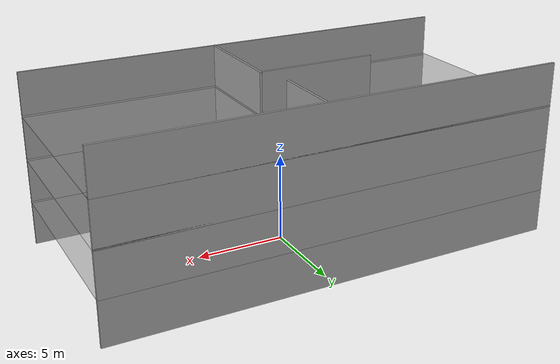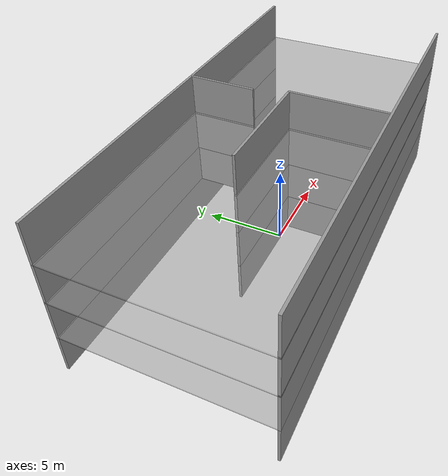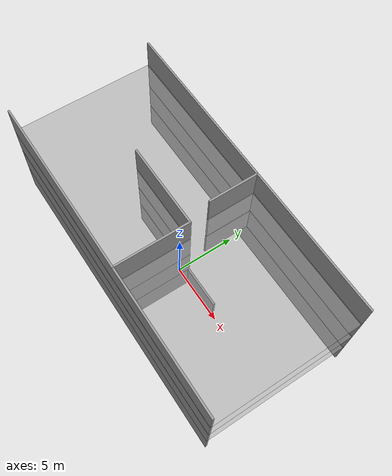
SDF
<sdf version="1.7">
 <world name="__default__">
  <model name="level4_floor">
   <link name="Floor_0">
    <pose>0 0 2.5 0 -0 0</pose>
    <inertial>
     <mass>1</mass>
     <inertia><ixx>1</ixx><ixy>0</ixy><ixz>0</ixz><iyy>1</iyy><iyz>0</iyz><izz>1</izz></inertia>
    </inertial>
    <visual name="Floor_0_Visual">
     <pose>0 0 0.05 0 -0 0</pose>
     <geometry><box><size>26 12 0.1</size></box></geometry>
     <material>
      <script><uri>file://media/materials/scripts/gazebo.material</uri><name>Gazebo/Grey</name></script>
      <ambient>1 1 1 1</ambient>
      <shader type="pixel"><normal_map>__default__</normal_map></shader>
      <diffuse>0.7 0.7 0.7 1</diffuse>
      <specular>0.01 0.01 0.01 1</specular>
      <emissive>0 0 0 1</emissive>
     </material>
     <meta><layer>1</layer></meta>
     <transparency>0.5</transparency>
    </visual>
    <collision name="Floor_0_Collision">
     <pose>0 0 0.05 0 -0 0</pose>
     <geometry><box><size>26 12 0.1</size></box></geometry>
     <surface>
      <friction>
       <ode><mu>1</mu><mu2>1</mu2><fdir1>0 0 0</fdir1><slip1>0</slip1><slip2>0</slip2></ode>
       <torsional>
        <coefficient>1</coefficient>
        <patch_radius>0</patch_radius>
        <surface_radius>0</surface_radius>
        <use_patch_radius>1</use_patch_radius>
        <ode><slip>0</slip></ode>
       </torsional>
      </friction>
      <bounce><restitution_coefficient>0</restitution_coefficient><threshold>1e+06</threshold></bounce>
      <contact>
       <collide_without_contact>0</collide_without_contact>
       <collide_without_contact_bitmask>1</collide_without_contact_bitmask>
       <collide_bitmask>1</collide_bitmask>
       <ode>
        <soft_cfm>0</soft_cfm>
        <soft_erp>0.2</soft_erp>
        <kp>1e+13</kp>
        <kd>1</kd>
        <max_vel>0.01</max_vel>
        <min_depth>0</min_depth>
       </ode>
       <bullet>
        <split_impulse>1</split_impulse>
        <split_impulse_penetration_threshold>-0.01</split_impulse_penetration_threshold>
        <soft_cfm>0</soft_cfm>
        <soft_erp>0.2</soft_erp>
        <kp>1e+13</kp>
        <kd>1</kd>
       </bullet>
      </contact>
     </surface>
    </collision>
   </link>
   <link name="Floor_1">
    <pose>0 0 5 0 -0 0</pose>
    <inertial>
     <mass>1</mass>
     <inertia><ixx>1</ixx><ixy>0</ixy><ixz>0</ixz><iyy>1</iyy><iyz>0</iyz><izz>1</izz></inertia>
    </inertial>
    <visual name="Floor_1_Visual">
     <pose>0 0 0.05 0 -0 0</pose>
     <geometry><box><size>26 12 0.1</size></box></geometry>
     <material>
      <script><uri>file://media/materials/scripts/gazebo.material</uri><name>Gazebo/Grey</name></script>
      <ambient>1 1 1 1</ambient>
      <shader type="pixel"><normal_map>__default__</normal_map></shader>
      <diffuse>0.7 0.7 0.7 1</diffuse>
      <specular>0.01 0.01 0.01 1</specular>
      <emissive>0 0 0 1</emissive>
     </material>
     <meta><layer>2</layer></meta>
     <transparency>0.5</transparency>
    </visual>
    <collision name="Floor_1_Collision">
     <pose>0 0 0.05 0 -0 0</pose>
     <geometry><box><size>26 12 0.1</size></box></geometry>
     <surface>
      <friction>
       <ode><mu>1</mu><mu2>1</mu2><fdir1>0 0 0</fdir1><slip1>0</slip1><slip2>0</slip2></ode>
       <torsional>
        <coefficient>1</coefficient>
        <patch_radius>0</patch_radius>
        <surface_radius>0</surface_radius>
        <use_patch_radius>1</use_patch_radius>
        <ode><slip>0</slip></ode>
       </torsional>
      </friction>
      <bounce><restitution_coefficient>0</restitution_coefficient><threshold>1e+06</threshold></bounce>
      <contact>
       <collide_without_contact>0</collide_without_contact>
       <collide_without_contact_bitmask>1</collide_without_contact_bitmask>
       <collide_bitmask>1</collide_bitmask>
       <ode>
        <soft_cfm>0</soft_cfm>
        <soft_erp>0.2</soft_erp>
        <kp>1e+13</kp>
        <kd>1</kd>
        <max_vel>0.01</max_vel>
        <min_depth>0</min_depth>
       </ode>
       <bullet>
        <split_impulse>1</split_impulse>
        <split_impulse_penetration_threshold>-0.01</split_impulse_penetration_threshold>
        <soft_cfm>0</soft_cfm>
        <soft_erp>0.2</soft_erp>
        <kp>1e+13</kp>
        <kd>1</kd>
       </bullet>
      </contact>
     </surface>
    </collision>
   </link>
   <link name="Floor_2">
    <pose>0 0 7.5 0 -0 0</pose>
    <inertial>
     <mass>1</mass>
     <inertia><ixx>1</ixx><ixy>0</ixy><ixz>0</ixz><iyy>1</iyy><iyz>0</iyz><izz>1</izz></inertia>
    </inertial>
    <visual name="Floor_2_Visual">
     <pose>0 0 0.05 0 -0 0</pose>
     <geometry><box><size>26 12 0.1</size></box></geometry>
     <material>
      <script><uri>file://media/materials/scripts/gazebo.material</uri><name>Gazebo/Grey</name></script>
      <ambient>1 1 1 1</ambient>
      <shader type="pixel"><normal_map>__default__</normal_map></shader>
      <diffuse>0.7 0.7 0.7 1</diffuse>
      <specular>0.01 0.01 0.01 1</specular>
      <emissive>0 0 0 1</emissive>
     </material>
     <meta><layer>3</layer></meta>
     <transparency>0.5</transparency>
    </visual>
    <collision name="Floor_2_Collision">
     <pose>0 0 0.05 0 -0 0</pose>
     <geometry><box><size>26 12 0.1</size></box></geometry>
     <surface>
      <friction>
       <ode><mu>1</mu><mu2>1</mu2><fdir1>0 0 0</fdir1><slip1>0</slip1><slip2>0</slip2></ode>
       <torsional>
        <coefficient>1</coefficient>
        <patch_radius>0</patch_radius>
        <surface_radius>0</surface_radius>
        <use_patch_radius>1</use_patch_radius>
        <ode><slip>0</slip></ode>
       </torsional>
      </friction>
      <bounce><restitution_coefficient>0</restitution_coefficient><threshold>1e+06</threshold></bounce>
      <contact>
       <collide_without_contact>0</collide_without_contact>
       <collide_without_contact_bitmask>1</collide_without_contact_bitmask>
       <collide_bitmask>1</collide_bitmask>
       <ode>
        <soft_cfm>0</soft_cfm>
        <soft_erp>0.2</soft_erp>
        <kp>1e+13</kp>
        <kd>1</kd>
        <max_vel>0.01</max_vel>
        <min_depth>0</min_depth>
       </ode>
       <bullet>
        <split_impulse>1</split_impulse>
        <split_impulse_penetration_threshold>-0.01</split_impulse_penetration_threshold>
        <soft_cfm>0</soft_cfm>
        <soft_erp>0.2</soft_erp>
        <kp>1e+13</kp>
        <kd>1</kd>
       </bullet>
      </contact>
     </surface>
    </collision>
   </link>
   <link name="Wall_0">
    <pose>0 5.925 0 0 -0 0</pose>
    <visual name="Wall_0_Visual">
     <pose>0 0 1.25 0 -0 0</pose>
     <geometry><box><size>26 0.15 2.5</size></box></geometry>
     <material>
      <script><uri>file://media/materials/scripts/gazebo.material</uri><name>Gazebo/Grey</name></script>
      <ambient>1 1 1 1</ambient>
      <shader type="pixel"/>
     </material>
     <meta><layer>0</layer></meta>
    </visual>
    <collision name="Wall_0_Collision">
     <pose>0 0 1.25 0 -0 0</pose>
     <geometry><box><size>26 0.15 2.5</size></box></geometry>
     <surface>
      <friction>
       <ode><mu>1</mu><mu2>1</mu2><fdir1>0 0 0</fdir1><slip1>0</slip1><slip2>0</slip2></ode>
       <torsional>
        <coefficient>1</coefficient>
        <patch_radius>0</patch_radius>
        <surface_radius>0</surface_radius>
        <use_patch_radius>1</use_patch_radius>
        <ode><slip>0</slip></ode>
       </torsional>
      </friction>
      <bounce><restitution_coefficient>0</restitution_coefficient><threshold>1e+06</threshold></bounce>
      <contact>
       <collide_without_contact>0</collide_without_contact>
       <collide_without_contact_bitmask>1</collide_without_contact_bitmask>
       <collide_bitmask>1</collide_bitmask>
       <ode>
        <soft_cfm>0</soft_cfm>
        <soft_erp>0.2</soft_erp>
        <kp>1e+13</kp>
        <kd>1</kd>
        <max_vel>0.01</max_vel>
        <min_depth>0</min_depth>
       </ode>
       <bullet>
        <split_impulse>1</split_impulse>
        <split_impulse_penetration_threshold>-0.01</split_impulse_penetration_threshold>
        <soft_cfm>0</soft_cfm>
        <soft_erp>0.2</soft_erp>
        <kp>1e+13</kp>
        <kd>1</kd>
       </bullet>
      </contact>
     </surface>
    </collision>
   </link>
   <link name="Wall_16">
    <pose>1.74198 -2.94095 0 0 0 -1.5708</pose>
    <visual name="Wall_16_Visual">
     <pose>0 0 1.25 0 -0 0</pose>
     <geometry><box><size>6 0.15 2.5</size></box></geometry>
     <material>
      <script><uri>file://media/materials/scripts/gazebo.material</uri><name>Gazebo/Grey</name></script>
      <ambient>1 1 1 1</ambient>
      <shader type="pixel"/>
     </material>
     <meta><layer>0</layer></meta>
    </visual>
    <collision name="Wall_16_Collision">
     <pose>0 0 1.25 0 -0 0</pose>
     <geometry><box><size>6 0.15 2.5</size></box></geometry>
     <surface>
      <friction>
       <ode><mu>1</mu><mu2>1</mu2><fdir1>0 0 0</fdir1><slip1>0</slip1><slip2>0</slip2></ode>
       <torsional>
        <coefficient>1</coefficient>
        <patch_radius>0</patch_radius>
        <surface_radius>0</surface_radius>
        <use_patch_radius>1</use_patch_radius>
        <ode><slip>0</slip></ode>
       </torsional>
      </friction>
      <bounce><restitution_coefficient>0</restitution_coefficient><threshold>1e+06</threshold></bounce>
      <contact>
       <collide_without_contact>0</collide_without_contact>
       <collide_without_contact_bitmask>1</collide_without_contact_bitmask>
       <collide_bitmask>1</collide_bitmask>
       <ode>
        <soft_cfm>0</soft_cfm>
        <soft_erp>0.2</soft_erp>
        <kp>1e+13</kp>
        <kd>1</kd>
        <max_vel>0.01</max_vel>
        <min_depth>0</min_depth>
       </ode>
       <bullet>
        <split_impulse>1</split_impulse>
        <split_impulse_penetration_threshold>-0.01</split_impulse_penetration_threshold>
        <soft_cfm>0</soft_cfm>
        <soft_erp>0.2</soft_erp>
        <kp>1e+13</kp>
        <kd>1</kd>
       </bullet>
      </contact>
     </surface>
    </collision>
   </link>
   <link name="Wall_18">
    <pose>-1.68374 -0.007809 0 0 -0 0</pose>
    <visual name="Wall_18_Visual">
     <pose>0 0 1.25 0 -0 0</pose>
     <geometry><box><size>6.75 0.15 2.5</size></box></geometry>
     <material>
      <script><uri>file://media/materials/scripts/gazebo.material</uri><name>Gazebo/Grey</name></script>
      <ambient>1 1 1 1</ambient>
      <shader type="pixel"/>
     </material>
     <meta><layer>0</layer></meta>
    </visual>
    <collision name="Wall_18_Collision">
     <pose>0 0 1.25 0 -0 0</pose>
     <geometry><box><size>6.75 0.15 2.5</size></box></geometry>
     <surface>
      <friction>
       <ode><mu>1</mu><mu2>1</mu2><fdir1>0 0 0</fdir1><slip1>0</slip1><slip2>0</slip2></ode>
       <torsional>
        <coefficient>1</coefficient>
        <patch_radius>0</patch_radius>
        <surface_radius>0</surface_radius>
        <use_patch_radius>1</use_patch_radius>
        <ode><slip>0</slip></ode>
       </torsional>
      </friction>
      <bounce><restitution_coefficient>0</restitution_coefficient><threshold>1e+06</threshold></bounce>
      <contact>
       <collide_without_contact>0</collide_without_contact>
       <collide_without_contact_bitmask>1</collide_without_contact_bitmask>
       <collide_bitmask>1</collide_bitmask>
       <ode>
        <soft_cfm>0</soft_cfm>
        <soft_erp>0.2</soft_erp>
        <kp>1e+13</kp>
        <kd>1</kd>
        <max_vel>0.01</max_vel>
        <min_depth>0</min_depth>
       </ode>
       <bullet>
        <split_impulse>1</split_impulse>
        <split_impulse_penetration_threshold>-0.01</split_impulse_penetration_threshold>
        <soft_cfm>0</soft_cfm>
        <soft_erp>0.2</soft_erp>
        <kp>1e+13</kp>
        <kd>1</kd>
       </bullet>
      </contact>
     </surface>
    </collision>
   </link>
   <link name="Wall_22">
    <pose>3.48965 -0.007809 0 0 -0 0</pose>
    <visual name="Wall_22_Visual">
     <pose>0 0 1.25 0 -0 0</pose>
     <geometry><box><size>3.5 0.15 2.5</size></box></geometry>
     <material>
      <script><uri>file://media/materials/scripts/gazebo.material</uri><name>Gazebo/Grey</name></script>
      <ambient>1 1 1 1</ambient>
      <shader type="pixel"/>
     </material>
     <meta><layer>0</layer></meta>
    </visual>
    <collision name="Wall_22_Collision">
     <pose>0 0 1.25 0 -0 0</pose>
     <geometry><box><size>3.5 0.15 2.5</size></box></geometry>
     <surface>
      <friction>
       <ode><mu>1</mu><mu2>1</mu2><fdir1>0 0 0</fdir1><slip1>0</slip1><slip2>0</slip2></ode>
       <torsional>
        <coefficient>1</coefficient>
        <patch_radius>0</patch_radius>
        <surface_radius>0</surface_radius>
        <use_patch_radius>1</use_patch_radius>
        <ode><slip>0</slip></ode>
       </torsional>
      </friction>
      <bounce><restitution_coefficient>0</restitution_coefficient><threshold>1e+06</threshold></bounce>
      <contact>
       <collide_without_contact>0</collide_without_contact>
       <collide_without_contact_bitmask>1</collide_without_contact_bitmask>
       <collide_bitmask>1</collide_bitmask>
       <ode>
        <soft_cfm>0</soft_cfm>
        <soft_erp>0.2</soft_erp>
        <kp>1e+13</kp>
        <kd>1</kd>
        <max_vel>0.01</max_vel>
        <min_depth>0</min_depth>
       </ode>
       <bullet>
        <split_impulse>1</split_impulse>
        <split_impulse_penetration_threshold>-0.01</split_impulse_penetration_threshold>
        <soft_cfm>0</soft_cfm>
        <soft_erp>0.2</soft_erp>
        <kp>1e+13</kp>
        <kd>1</kd>
       </bullet>
      </contact>
     </surface>
    </collision>
   </link>
   <link name="Wall_29">
    <pose>0 5.925 2.5 0 -0 0</pose>
    <visual name="Wall_29_Visual">
     <pose>0 0 1.25 0 -0 0</pose>
     <geometry><box><size>26 0.15 2.5</size></box></geometry>
     <material>
      <script><uri>file://media/materials/scripts/gazebo.material</uri><name>Gazebo/Grey</name></script>
      <ambient>1 1 1 1</ambient>
      <shader type="pixel"/>
     </material>
     <meta><layer>1</layer></meta>
    </visual>
    <collision name="Wall_29_Collision">
     <pose>0 0 1.25 0 -0 0</pose>
     <geometry><box><size>26 0.15 2.5</size></box></geometry>
     <surface>
      <friction>
       <ode><mu>1</mu><mu2>1</mu2><fdir1>0 0 0</fdir1><slip1>0</slip1><slip2>0</slip2></ode>
       <torsional>
        <coefficient>1</coefficient>
        <patch_radius>0</patch_radius>
        <surface_radius>0</surface_radius>
        <use_patch_radius>1</use_patch_radius>
        <ode><slip>0</slip></ode>
       </torsional>
      </friction>
      <bounce><restitution_coefficient>0</restitution_coefficient><threshold>1e+06</threshold></bounce>
      <contact>
       <collide_without_contact>0</collide_without_contact>
       <collide_without_contact_bitmask>1</collide_without_contact_bitmask>
       <collide_bitmask>1</collide_bitmask>
       <ode>
        <soft_cfm>0</soft_cfm>
        <soft_erp>0.2</soft_erp>
        <kp>1e+13</kp>
        <kd>1</kd>
        <max_vel>0.01</max_vel>
        <min_depth>0</min_depth>
       </ode>
       <bullet>
        <split_impulse>1</split_impulse>
        <split_impulse_penetration_threshold>-0.01</split_impulse_penetration_threshold>
        <soft_cfm>0</soft_cfm>
        <soft_erp>0.2</soft_erp>
        <kp>1e+13</kp>
        <kd>1</kd>
       </bullet>
      </contact>
     </surface>
    </collision>
   </link>
   <link name="Wall_31">
    <pose>0 -5.925 2.5 0 -0 0</pose>
    <visual name="Wall_31_Visual">
     <pose>0 0 1.25 0 -0 0</pose>
     <geometry><box><size>26 0.15 2.5</size></box></geometry>
     <material>
      <script><uri>file://media/materials/scripts/gazebo.material</uri><name>Gazebo/Grey</name></script>
      <ambient>1 1 1 1</ambient>
      <shader type="pixel"/>
     </material>
     <meta><layer>1</layer></meta>
    </visual>
    <collision name="Wall_31_Collision">
     <pose>0 0 1.25 0 -0 0</pose>
     <geometry><box><size>26 0.15 2.5</size></box></geometry>
     <surface>
      <friction>
       <ode><mu>1</mu><mu2>1</mu2><fdir1>0 0 0</fdir1><slip1>0</slip1><slip2>0</slip2></ode>
       <torsional>
        <coefficient>1</coefficient>
        <patch_radius>0</patch_radius>
        <surface_radius>0</surface_radius>
        <use_patch_radius>1</use_patch_radius>
        <ode><slip>0</slip></ode>
       </torsional>
      </friction>
      <bounce><restitution_coefficient>0</restitution_coefficient><threshold>1e+06</threshold></bounce>
      <contact>
       <collide_without_contact>0</collide_without_contact>
       <collide_without_contact_bitmask>1</collide_without_contact_bitmask>
       <collide_bitmask>1</collide_bitmask>
       <ode>
        <soft_cfm>0</soft_cfm>
        <soft_erp>0.2</soft_erp>
        <kp>1e+13</kp>
        <kd>1</kd>
        <max_vel>0.01</max_vel>
        <min_depth>0</min_depth>
       </ode>
       <bullet>
        <split_impulse>1</split_impulse>
        <split_impulse_penetration_threshold>-0.01</split_impulse_penetration_threshold>
        <soft_cfm>0</soft_cfm>
        <soft_erp>0.2</soft_erp>
        <kp>1e+13</kp>
        <kd>1</kd>
       </bullet>
      </contact>
     </surface>
    </collision>
   </link>
   <link name="Wall_35">
    <pose>1.74198 -2.94095 2.5 0 0 -1.5708</pose>
    <visual name="Wall_35_Visual">
     <pose>0 0 1.25 0 -0 0</pose>
     <geometry><box><size>6 0.15 2.5</size></box></geometry>
     <material>
      <script><uri>file://media/materials/scripts/gazebo.material</uri><name>Gazebo/Grey</name></script>
      <ambient>1 1 1 1</ambient>
      <shader type="pixel"/>
     </material>
     <meta><layer>1</layer></meta>
    </visual>
    <collision name="Wall_35_Collision">
     <pose>0 0 1.25 0 -0 0</pose>
     <geometry><box><size>6 0.15 2.5</size></box></geometry>
     <surface>
      <friction>
       <ode><mu>1</mu><mu2>1</mu2><fdir1>0 0 0</fdir1><slip1>0</slip1><slip2>0</slip2></ode>
       <torsional>
        <coefficient>1</coefficient>
        <patch_radius>0</patch_radius>
        <surface_radius>0</surface_radius>
        <use_patch_radius>1</use_patch_radius>
        <ode><slip>0</slip></ode>
       </torsional>
      </friction>
      <bounce><restitution_coefficient>0</restitution_coefficient><threshold>1e+06</threshold></bounce>
      <contact>
       <collide_without_contact>0</collide_without_contact>
       <collide_without_contact_bitmask>1</collide_without_contact_bitmask>
       <collide_bitmask>1</collide_bitmask>
       <ode>
        <soft_cfm>0</soft_cfm>
        <soft_erp>0.2</soft_erp>
        <kp>1e+13</kp>
        <kd>1</kd>
        <max_vel>0.01</max_vel>
        <min_depth>0</min_depth>
       </ode>
       <bullet>
        <split_impulse>1</split_impulse>
        <split_impulse_penetration_threshold>-0.01</split_impulse_penetration_threshold>
        <soft_cfm>0</soft_cfm>
        <soft_erp>0.2</soft_erp>
        <kp>1e+13</kp>
        <kd>1</kd>
       </bullet>
      </contact>
     </surface>
    </collision>
   </link>
   <link name="Wall_36">
    <pose>-1.68374 -0.007809 2.5 0 -0 0</pose>
    <visual name="Wall_36_Visual">
     <pose>0 0 1.25 0 -0 0</pose>
     <geometry><box><size>6.75 0.15 2.5</size></box></geometry>
     <material>
      <script><uri>file://media/materials/scripts/gazebo.material</uri><name>Gazebo/Grey</name></script>
      <ambient>1 1 1 1</ambient>
      <shader type="pixel"/>
     </material>
     <meta><layer>1</layer></meta>
    </visual>
    <collision name="Wall_36_Collision">
     <pose>0 0 1.25 0 -0 0</pose>
     <geometry><box><size>6.75 0.15 2.5</size></box></geometry>
     <surface>
      <friction>
       <ode><mu>1</mu><mu2>1</mu2><fdir1>0 0 0</fdir1><slip1>0</slip1><slip2>0</slip2></ode>
       <torsional>
        <coefficient>1</coefficient>
        <patch_radius>0</patch_radius>
        <surface_radius>0</surface_radius>
        <use_patch_radius>1</use_patch_radius>
        <ode><slip>0</slip></ode>
       </torsional>
      </friction>
      <bounce><restitution_coefficient>0</restitution_coefficient><threshold>1e+06</threshold></bounce>
      <contact>
       <collide_without_contact>0</collide_without_contact>
       <collide_without_contact_bitmask>1</collide_without_contact_bitmask>
       <collide_bitmask>1</collide_bitmask>
       <ode>
        <soft_cfm>0</soft_cfm>
        <soft_erp>0.2</soft_erp>
        <kp>1e+13</kp>
        <kd>1</kd>
        <max_vel>0.01</max_vel>
        <min_depth>0</min_depth>
       </ode>
       <bullet>
        <split_impulse>1</split_impulse>
        <split_impulse_penetration_threshold>-0.01</split_impulse_penetration_threshold>
        <soft_cfm>0</soft_cfm>
        <soft_erp>0.2</soft_erp>
        <kp>1e+13</kp>
        <kd>1</kd>
       </bullet>
      </contact>
     </surface>
    </collision>
   </link>
   <link name="Wall_42">
    <pose>0 5.925 5 0 -0 0</pose>
    <visual name="Wall_42_Visual">
     <pose>0 0 1.25 0 -0 0</pose>
     <geometry><box><size>26 0.15 2.5</size></box></geometry>
     <material>
      <script><uri>file://media/materials/scripts/gazebo.material</uri><name>Gazebo/Grey</name></script>
      <ambient>1 1 1 1</ambient>
      <shader type="pixel"/>
     </material>
     <meta><layer>2</layer></meta>
    </visual>
    <collision name="Wall_42_Collision">
     <pose>0 0 1.25 0 -0 0</pose>
     <geometry><box><size>26 0.15 2.5</size></box></geometry>
     <surface>
      <friction>
       <ode><mu>1</mu><mu2>1</mu2><fdir1>0 0 0</fdir1><slip1>0</slip1><slip2>0</slip2></ode>
       <torsional>
        <coefficient>1</coefficient>
        <patch_radius>0</patch_radius>
        <surface_radius>0</surface_radius>
        <use_patch_radius>1</use_patch_radius>
        <ode><slip>0</slip></ode>
       </torsional>
      </friction>
      <bounce><restitution_coefficient>0</restitution_coefficient><threshold>1e+06</threshold></bounce>
      <contact>
       <collide_without_contact>0</collide_without_contact>
       <collide_without_contact_bitmask>1</collide_without_contact_bitmask>
       <collide_bitmask>1</collide_bitmask>
       <ode>
        <soft_cfm>0</soft_cfm>
        <soft_erp>0.2</soft_erp>
        <kp>1e+13</kp>
        <kd>1</kd>
        <max_vel>0.01</max_vel>
        <min_depth>0</min_depth>
       </ode>
       <bullet>
        <split_impulse>1</split_impulse>
        <split_impulse_penetration_threshold>-0.01</split_impulse_penetration_threshold>
        <soft_cfm>0</soft_cfm>
        <soft_erp>0.2</soft_erp>
        <kp>1e+13</kp>
        <kd>1</kd>
       </bullet>
      </contact>
     </surface>
    </collision>
   </link>
   <link name="Wall_44">
    <pose>0 -5.925 5 0 -0 0</pose>
    <visual name="Wall_44_Visual">
     <pose>0 0 1.25 0 -0 0</pose>
     <geometry><box><size>26 0.15 2.5</size></box></geometry>
     <material>
      <script><uri>file://media/materials/scripts/gazebo.material</uri><name>Gazebo/Grey</name></script>
      <ambient>1 1 1 1</ambient>
      <shader type="pixel"/>
     </material>
     <meta><layer>2</layer></meta>
    </visual>
    <collision name="Wall_44_Collision">
     <pose>0 0 1.25 0 -0 0</pose>
     <geometry><box><size>26 0.15 2.5</size></box></geometry>
     <surface>
      <friction>
       <ode><mu>1</mu><mu2>1</mu2><fdir1>0 0 0</fdir1><slip1>0</slip1><slip2>0</slip2></ode>
       <torsional>
        <coefficient>1</coefficient>
        <patch_radius>0</patch_radius>
        <surface_radius>0</surface_radius>
        <use_patch_radius>1</use_patch_radius>
        <ode><slip>0</slip></ode>
       </torsional>
      </friction>
      <bounce><restitution_coefficient>0</restitution_coefficient><threshold>1e+06</threshold></bounce>
      <contact>
       <collide_without_contact>0</collide_without_contact>
       <collide_without_contact_bitmask>1</collide_without_contact_bitmask>
       <collide_bitmask>1</collide_bitmask>
       <ode>
        <soft_cfm>0</soft_cfm>
        <soft_erp>0.2</soft_erp>
        <kp>1e+13</kp>
        <kd>1</kd>
        <max_vel>0.01</max_vel>
        <min_depth>0</min_depth>
       </ode>
       <bullet>
        <split_impulse>1</split_impulse>
        <split_impulse_penetration_threshold>-0.01</split_impulse_penetration_threshold>
        <soft_cfm>0</soft_cfm>
        <soft_erp>0.2</soft_erp>
        <kp>1e+13</kp>
        <kd>1</kd>
       </bullet>
      </contact>
     </surface>
    </collision>
   </link>
   <link name="Wall_48">
    <pose>1.74198 -2.94095 5 0 0 -1.5708</pose>
    <visual name="Wall_48_Visual">
     <pose>0 0 1.25 0 -0 0</pose>
     <geometry><box><size>6 0.15 2.5</size></box></geometry>
     <material>
      <script><uri>file://media/materials/scripts/gazebo.material</uri><name>Gazebo/Grey</name></script>
      <ambient>1 1 1 1</ambient>
      <shader type="pixel"/>
     </material>
     <meta><layer>2</layer></meta>
    </visual>
    <collision name="Wall_48_Collision">
     <pose>0 0 1.25 0 -0 0</pose>
     <geometry><box><size>6 0.15 2.5</size></box></geometry>
     <surface>
      <friction>
       <ode><mu>1</mu><mu2>1</mu2><fdir1>0 0 0</fdir1><slip1>0</slip1><slip2>0</slip2></ode>
       <torsional>
        <coefficient>1</coefficient>
        <patch_radius>0</patch_radius>
        <surface_radius>0</surface_radius>
        <use_patch_radius>1</use_patch_radius>
        <ode><slip>0</slip></ode>
       </torsional>
      </friction>
      <bounce><restitution_coefficient>0</restitution_coefficient><threshold>1e+06</threshold></bounce>
      <contact>
       <collide_without_contact>0</collide_without_contact>
       <collide_without_contact_bitmask>1</collide_without_contact_bitmask>
       <collide_bitmask>1</collide_bitmask>
       <ode>
        <soft_cfm>0</soft_cfm>
        <soft_erp>0.2</soft_erp>
        <kp>1e+13</kp>
        <kd>1</kd>
        <max_vel>0.01</max_vel>
        <min_depth>0</min_depth>
       </ode>
       <bullet>
        <split_impulse>1</split_impulse>
        <split_impulse_penetration_threshold>-0.01</split_impulse_penetration_threshold>
        <soft_cfm>0</soft_cfm>
        <soft_erp>0.2</soft_erp>
        <kp>1e+13</kp>
        <kd>1</kd>
       </bullet>
      </contact>
     </surface>
    </collision>
   </link>
   <link name="Wall_49">
    <pose>-1.68374 -0.007809 5 0 -0 0</pose>
    <visual name="Wall_49_Visual">
     <pose>0 0 1.25 0 -0 0</pose>
     <geometry><box><size>6.75 0.15 2.5</size></box></geometry>
     <material>
      <script><uri>file://media/materials/scripts/gazebo.material</uri><name>Gazebo/Grey</name></script>
      <ambient>1 1 1 1</ambient>
      <shader type="pixel"/>
     </material>
     <meta><layer>2</layer></meta>
    </visual>
    <collision name="Wall_49_Collision">
     <pose>0 0 1.25 0 -0 0</pose>
     <geometry><box><size>6.75 0.15 2.5</size></box></geometry>
     <surface>
      <friction>
       <ode><mu>1</mu><mu2>1</mu2><fdir1>0 0 0</fdir1><slip1>0</slip1><slip2>0</slip2></ode>
       <torsional>
        <coefficient>1</coefficient>
        <patch_radius>0</patch_radius>
        <surface_radius>0</surface_radius>
        <use_patch_radius>1</use_patch_radius>
        <ode><slip>0</slip></ode>
       </torsional>
      </friction>
      <bounce><restitution_coefficient>0</restitution_coefficient><threshold>1e+06</threshold></bounce>
      <contact>
       <collide_without_contact>0</collide_without_contact>
       <collide_without_contact_bitmask>1</collide_without_contact_bitmask>
       <collide_bitmask>1</collide_bitmask>
       <ode>
        <soft_cfm>0</soft_cfm>
        <soft_erp>0.2</soft_erp>
        <kp>1e+13</kp>
        <kd>1</kd>
        <max_vel>0.01</max_vel>
        <min_depth>0</min_depth>
       </ode>
       <bullet>
        <split_impulse>1</split_impulse>
        <split_impulse_penetration_threshold>-0.01</split_impulse_penetration_threshold>
        <soft_cfm>0</soft_cfm>
        <soft_erp>0.2</soft_erp>
        <kp>1e+13</kp>
        <kd>1</kd>
       </bullet>
      </contact>
     </surface>
    </collision>
   </link>
   <link name="Wall_5">
    <pose>0 -5.925 0 0 -0 0</pose>
    <visual name="Wall_5_Visual">
     <pose>0 0 1.25 0 -0 0</pose>
     <geometry><box><size>26 0.15 2.5</size></box></geometry>
     <material>
      <script><uri>file://media/materials/scripts/gazebo.material</uri><name>Gazebo/Grey</name></script>
      <ambient>1 1 1 1</ambient>
      <shader type="pixel"/>
     </material>
     <meta><layer>0</layer></meta>
    </visual>
    <collision name="Wall_5_Collision">
     <pose>0 0 1.25 0 -0 0</pose>
     <geometry><box><size>26 0.15 2.5</size></box></geometry>
     <surface>
      <friction>
       <ode><mu>1</mu><mu2>1</mu2><fdir1>0 0 0</fdir1><slip1>0</slip1><slip2>0</slip2></ode>
       <torsional>
        <coefficient>1</coefficient>
        <patch_radius>0</patch_radius>
        <surface_radius>0</surface_radius>
        <use_patch_radius>1</use_patch_radius>
        <ode><slip>0</slip></ode>
       </torsional>
      </friction>
      <bounce><restitution_coefficient>0</restitution_coefficient><threshold>1e+06</threshold></bounce>
      <contact>
       <collide_without_contact>0</collide_without_contact>
       <collide_without_contact_bitmask>1</collide_without_contact_bitmask>
       <collide_bitmask>1</collide_bitmask>
       <ode>
        <soft_cfm>0</soft_cfm>
        <soft_erp>0.2</soft_erp>
        <kp>1e+13</kp>
        <kd>1</kd>
        <max_vel>0.01</max_vel>
        <min_depth>0</min_depth>
       </ode>
       <bullet>
        <split_impulse>1</split_impulse>
        <split_impulse_penetration_threshold>-0.01</split_impulse_penetration_threshold>
        <soft_cfm>0</soft_cfm>
        <soft_erp>0.2</soft_erp>
        <kp>1e+13</kp>
        <kd>1</kd>
       </bullet>
      </contact>
     </surface>
    </collision>
   </link>
   <link name="Wall_60">
    <pose>1.14281 3.92436 5 0 -0 1.5708</pose>
    <visual name="Wall_60_Visual">
     <pose>0 0 1.25 0 -0 0</pose>
     <geometry><box><size>4 0.15 2.5</size></box></geometry>
     <material>
      <script><uri>file://media/materials/scripts/gazebo.material</uri><name>Gazebo/Grey</name></script>
      <ambient>1 1 1 1</ambient>
      <shader type="pixel"/>
     </material>
     <meta><layer>2</layer></meta>
    </visual>
    <collision name="Wall_60_Collision">
     <pose>0 0 1.25 0 -0 0</pose>
     <geometry><box><size>4 0.15 2.5</size></box></geometry>
     <surface>
      <friction>
       <ode><mu>1</mu><mu2>1</mu2><fdir1>0 0 0</fdir1><slip1>0</slip1><slip2>0</slip2></ode>
       <torsional>
        <coefficient>1</coefficient>
        <patch_radius>0</patch_radius>
        <surface_radius>0</surface_radius>
        <use_patch_radius>1</use_patch_radius>
        <ode><slip>0</slip></ode>
       </torsional>
      </friction>
      <bounce><restitution_coefficient>0</restitution_coefficient><threshold>1e+06</threshold></bounce>
      <contact>
       <collide_without_contact>0</collide_without_contact>
       <collide_without_contact_bitmask>1</collide_without_contact_bitmask>
       <collide_bitmask>1</collide_bitmask>
       <ode>
        <soft_cfm>0</soft_cfm>
        <soft_erp>0.2</soft_erp>
        <kp>1e+13</kp>
        <kd>1</kd>
        <max_vel>0.01</max_vel>
        <min_depth>0</min_depth>
       </ode>
       <bullet>
        <split_impulse>1</split_impulse>
        <split_impulse_penetration_threshold>-0.01</split_impulse_penetration_threshold>
        <soft_cfm>0</soft_cfm>
        <soft_erp>0.2</soft_erp>
        <kp>1e+13</kp>
        <kd>1</kd>
       </bullet>
      </contact>
     </surface>
    </collision>
   </link>
   <link name="Wall_65">
    <pose>0 5.925 7.5 0 -0 0</pose>
    <visual name="Wall_65_Visual">
     <pose>0 0 1.25 0 -0 0</pose>
     <geometry><box><size>26 0.15 2.5</size></box></geometry>
     <material>
      <script><uri>file://media/materials/scripts/gazebo.material</uri><name>Gazebo/Grey</name></script>
      <ambient>1 1 1 1</ambient>
      <shader type="pixel"/>
     </material>
     <meta><layer>3</layer></meta>
    </visual>
    <collision name="Wall_65_Collision">
     <pose>0 0 1.25 0 -0 0</pose>
     <geometry><box><size>26 0.15 2.5</size></box></geometry>
     <surface>
      <friction>
       <ode><mu>1</mu><mu2>1</mu2><fdir1>0 0 0</fdir1><slip1>0</slip1><slip2>0</slip2></ode>
       <torsional>
        <coefficient>1</coefficient>
        <patch_radius>0</patch_radius>
        <surface_radius>0</surface_radius>
        <use_patch_radius>1</use_patch_radius>
        <ode><slip>0</slip></ode>
       </torsional>
      </friction>
      <bounce><restitution_coefficient>0</restitution_coefficient><threshold>1e+06</threshold></bounce>
      <contact>
       <collide_without_contact>0</collide_without_contact>
       <collide_without_contact_bitmask>1</collide_without_contact_bitmask>
       <collide_bitmask>1</collide_bitmask>
       <ode>
        <soft_cfm>0</soft_cfm>
        <soft_erp>0.2</soft_erp>
        <kp>1e+13</kp>
        <kd>1</kd>
        <max_vel>0.01</max_vel>
        <min_depth>0</min_depth>
       </ode>
       <bullet>
        <split_impulse>1</split_impulse>
        <split_impulse_penetration_threshold>-0.01</split_impulse_penetration_threshold>
        <soft_cfm>0</soft_cfm>
        <soft_erp>0.2</soft_erp>
        <kp>1e+13</kp>
        <kd>1</kd>
       </bullet>
      </contact>
     </surface>
    </collision>
   </link>
   <link name="Wall_67">
    <pose>0 -5.925 7.5 0 -0 0</pose>
    <visual name="Wall_67_Visual">
     <pose>0 0 1.25 0 -0 0</pose>
     <geometry><box><size>26 0.15 2.5</size></box></geometry>
     <material>
      <script><uri>file://media/materials/scripts/gazebo.material</uri><name>Gazebo/Grey</name></script>
      <ambient>1 1 1 1</ambient>
      <shader type="pixel"/>
     </material>
     <meta><layer>3</layer></meta>
    </visual>
    <collision name="Wall_67_Collision">
     <pose>0 0 1.25 0 -0 0</pose>
     <geometry><box><size>26 0.15 2.5</size></box></geometry>
     <surface>
      <friction>
       <ode><mu>1</mu><mu2>1</mu2><fdir1>0 0 0</fdir1><slip1>0</slip1><slip2>0</slip2></ode>
       <torsional>
        <coefficient>1</coefficient>
        <patch_radius>0</patch_radius>
        <surface_radius>0</surface_radius>
        <use_patch_radius>1</use_patch_radius>
        <ode><slip>0</slip></ode>
       </torsional>
      </friction>
      <bounce><restitution_coefficient>0</restitution_coefficient><threshold>1e+06</threshold></bounce>
      <contact>
       <collide_without_contact>0</collide_without_contact>
       <collide_without_contact_bitmask>1</collide_without_contact_bitmask>
       <collide_bitmask>1</collide_bitmask>
       <ode>
        <soft_cfm>0</soft_cfm>
        <soft_erp>0.2</soft_erp>
        <kp>1e+13</kp>
        <kd>1</kd>
        <max_vel>0.01</max_vel>
        <min_depth>0</min_depth>
       </ode>
       <bullet>
        <split_impulse>1</split_impulse>
        <split_impulse_penetration_threshold>-0.01</split_impulse_penetration_threshold>
        <soft_cfm>0</soft_cfm>
        <soft_erp>0.2</soft_erp>
        <kp>1e+13</kp>
        <kd>1</kd>
       </bullet>
      </contact>
     </surface>
    </collision>
   </link>
   <link name="Wall_71">
    <pose>1.74198 -2.94095 7.5 0 0 -1.5708</pose>
    <visual name="Wall_71_Visual">
     <pose>0 0 1.25 0 -0 0</pose>
     <geometry><box><size>6 0.15 2.5</size></box></geometry>
     <material>
      <script><uri>file://media/materials/scripts/gazebo.material</uri><name>Gazebo/Grey</name></script>
      <ambient>1 1 1 1</ambient>
      <shader type="pixel"/>
     </material>
     <meta><layer>3</layer></meta>
    </visual>
    <collision name="Wall_71_Collision">
     <pose>0 0 1.25 0 -0 0</pose>
     <geometry><box><size>6 0.15 2.5</size></box></geometry>
     <surface>
      <friction>
       <ode><mu>1</mu><mu2>1</mu2><fdir1>0 0 0</fdir1><slip1>0</slip1><slip2>0</slip2></ode>
       <torsional>
        <coefficient>1</coefficient>
        <patch_radius>0</patch_radius>
        <surface_radius>0</surface_radius>
        <use_patch_radius>1</use_patch_radius>
        <ode><slip>0</slip></ode>
       </torsional>
      </friction>
      <bounce><restitution_coefficient>0</restitution_coefficient><threshold>1e+06</threshold></bounce>
      <contact>
       <collide_without_contact>0</collide_without_contact>
       <collide_without_contact_bitmask>1</collide_without_contact_bitmask>
       <collide_bitmask>1</collide_bitmask>
       <ode>
        <soft_cfm>0</soft_cfm>
        <soft_erp>0.2</soft_erp>
        <kp>1e+13</kp>
        <kd>1</kd>
        <max_vel>0.01</max_vel>
        <min_depth>0</min_depth>
       </ode>
       <bullet>
        <split_impulse>1</split_impulse>
        <split_impulse_penetration_threshold>-0.01</split_impulse_penetration_threshold>
        <soft_cfm>0</soft_cfm>
        <soft_erp>0.2</soft_erp>
        <kp>1e+13</kp>
        <kd>1</kd>
       </bullet>
      </contact>
     </surface>
    </collision>
   </link>
   <link name="Wall_72">
    <pose>-1.68374 -0.007809 7.5 0 -0 0</pose>
    <visual name="Wall_72_Visual">
     <pose>0 0 1.25 0 -0 0</pose>
     <geometry><box><size>6.75 0.15 2.5</size></box></geometry>
     <material>
      <script><uri>file://media/materials/scripts/gazebo.material</uri><name>Gazebo/Grey</name></script>
      <ambient>1 1 1 1</ambient>
      <shader type="pixel"/>
     </material>
     <meta><layer>3</layer></meta>
    </visual>
    <collision name="Wall_72_Collision">
     <pose>0 0 1.25 0 -0 0</pose>
     <geometry><box><size>6.75 0.15 2.5</size></box></geometry>
     <surface>
      <friction>
       <ode><mu>1</mu><mu2>1</mu2><fdir1>0 0 0</fdir1><slip1>0</slip1><slip2>0</slip2></ode>
       <torsional>
        <coefficient>1</coefficient>
        <patch_radius>0</patch_radius>
        <surface_radius>0</surface_radius>
        <use_patch_radius>1</use_patch_radius>
        <ode><slip>0</slip></ode>
       </torsional>
      </friction>
      <bounce><restitution_coefficient>0</restitution_coefficient><threshold>1e+06</threshold></bounce>
      <contact>
       <collide_without_contact>0</collide_without_contact>
       <collide_without_contact_bitmask>1</collide_without_contact_bitmask>
       <collide_bitmask>1</collide_bitmask>
       <ode>
        <soft_cfm>0</soft_cfm>
        <soft_erp>0.2</soft_erp>
        <kp>1e+13</kp>
        <kd>1</kd>
        <max_vel>0.01</max_vel>
        <min_depth>0</min_depth>
       </ode>
       <bullet>
        <split_impulse>1</split_impulse>
        <split_impulse_penetration_threshold>-0.01</split_impulse_penetration_threshold>
        <soft_cfm>0</soft_cfm>
        <soft_erp>0.2</soft_erp>
        <kp>1e+13</kp>
        <kd>1</kd>
       </bullet>
      </contact>
     </surface>
    </collision>
   </link>
   <link name="Wall_80">
    <pose>1.14281 3.92436 7.5 0 -0 1.5708</pose>
    <visual name="Wall_80_Visual">
     <pose>0 0 1.25 0 -0 0</pose>
     <geometry><box><size>4 0.15 2.5</size></box></geometry>
     <material>
      <script><uri>file://media/materials/scripts/gazebo.material</uri><name>Gazebo/Grey</name></script>
      <ambient>1 1 1 1</ambient>
      <shader type="pixel"/>
     </material>
     <meta><layer>3</layer></meta>
    </visual>
    <collision name="Wall_80_Collision">
     <pose>0 0 1.25 0 -0 0</pose>
     <geometry><box><size>4 0.15 2.5</size></box></geometry>
     <surface>
      <friction>
       <ode><mu>1</mu><mu2>1</mu2><fdir1>0 0 0</fdir1><slip1>0</slip1><slip2>0</slip2></ode>
       <torsional>
        <coefficient>1</coefficient>
        <patch_radius>0</patch_radius>
        <surface_radius>0</surface_radius>
        <use_patch_radius>1</use_patch_radius>
        <ode><slip>0</slip></ode>
       </torsional>
      </friction>
      <bounce><restitution_coefficient>0</restitution_coefficient><threshold>1e+06</threshold></bounce>
      <contact>
       <collide_without_contact>0</collide_without_contact>
       <collide_without_contact_bitmask>1</collide_without_contact_bitmask>
       <collide_bitmask>1</collide_bitmask>
       <ode>
        <soft_cfm>0</soft_cfm>
        <soft_erp>0.2</soft_erp>
        <kp>1e+13</kp>
        <kd>1</kd>
        <max_vel>0.01</max_vel>
        <min_depth>0</min_depth>
       </ode>
       <bullet>
        <split_impulse>1</split_impulse>
        <split_impulse_penetration_threshold>-0.01</split_impulse_penetration_threshold>
        <soft_cfm>0</soft_cfm>
        <soft_erp>0.2</soft_erp>
        <kp>1e+13</kp>
        <kd>1</kd>
       </bullet>
      </contact>
     </surface>
    </collision>
   </link>
   <link name="Wall_86">
    <pose>1.18471 3.87533 2.5 0 -0 1.5708</pose>
    <visual name="Wall_86_Visual">
     <pose>0 0 1.25 0 -0 0</pose>
     <geometry><box><size>4 0.15 2.5</size></box></geometry>
     <material>
      <script><uri>file://media/materials/scripts/gazebo.material</uri><name>Gazebo/Grey</name></script>
      <ambient>1 1 1 1</ambient>
      <shader type="pixel"/>
     </material>
     <meta><layer>1</layer></meta>
    </visual>
    <collision name="Wall_86_Collision">
     <pose>0 0 1.25 0 -0 0</pose>
     <geometry><box><size>4 0.15 2.5</size></box></geometry>
     <surface>
      <friction>
       <ode><mu>1</mu><mu2>1</mu2><fdir1>0 0 0</fdir1><slip1>0</slip1><slip2>0</slip2></ode>
       <torsional>
        <coefficient>1</coefficient>
        <patch_radius>0</patch_radius>
        <surface_radius>0</surface_radius>
        <use_patch_radius>1</use_patch_radius>
        <ode><slip>0</slip></ode>
       </torsional>
      </friction>
      <bounce><restitution_coefficient>0</restitution_coefficient><threshold>1e+06</threshold></bounce>
      <contact>
       <collide_without_contact>0</collide_without_contact>
       <collide_without_contact_bitmask>1</collide_without_contact_bitmask>
       <collide_bitmask>1</collide_bitmask>
       <ode>
        <soft_cfm>0</soft_cfm>
        <soft_erp>0.2</soft_erp>
        <kp>1e+13</kp>
        <kd>1</kd>
        <max_vel>0.01</max_vel>
        <min_depth>0</min_depth>
       </ode>
       <bullet>
        <split_impulse>1</split_impulse>
        <split_impulse_penetration_threshold>-0.01</split_impulse_penetration_threshold>
        <soft_cfm>0</soft_cfm>
        <soft_erp>0.2</soft_erp>
        <kp>1e+13</kp>
        <kd>1</kd>
       </bullet>
      </contact>
     </surface>
    </collision>
   </link>
   <static>1</static>
   <pose>-0.582124 0 0 0 -0 0</pose>
  </model>
 </world>
</sdf>
